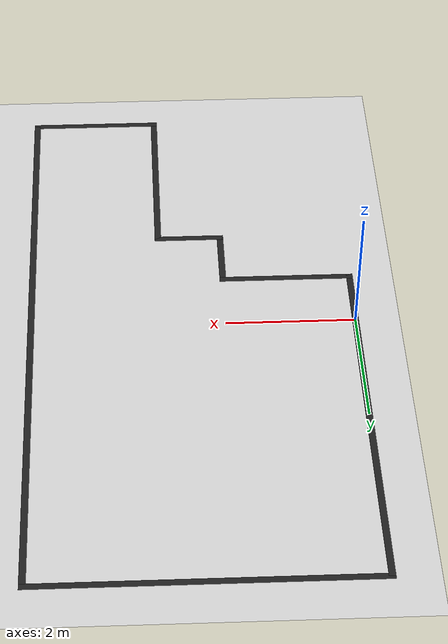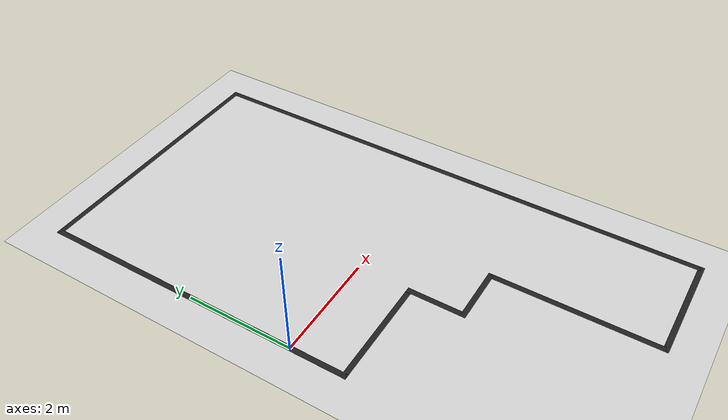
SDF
<?xml version="1.0" ?>
<sdf version='1.6'>
  <world name='empty'>
	<include>
		<uri>model://ground_plane</uri>
	 </include>
    	<include>
		<uri>model://sun</uri>
	</include>

    <model name='firstStraight'>
      <static>true</static>
      <link name='link'>
        <collision name='collision'>
          <geometry>
            <box>
              <size>0.1 5 0.0001</size>
            </box>
          </geometry>
          <surface>
            <friction>
              <ode>
                <mu>10</mu>
                <mu2>5</mu2>
              </ode>
            </friction>
          </surface>
        </collision>
        <visual name='visual'>
          <geometry>
            <box>
              <size>0.1 5 0.0001</size>
            </box>
          </geometry>
          <material>
            <script>
              <uri>file://media/materials/scripts/gazebo.material</uri>
              <name>Gazebo/Black</name>
            </script>
          </material>
        </visual>
      </link>
      <pose>0 2.5 0 0 0 0</pose>
      <joint name='joint' type='fixed'>
        <parent>world</parent>
        <child>link</child>
        <pose>0 2.5 0 0 0 0</pose>
      </joint>
    </model>

    <model name='firstRight'>
      <static>true</static>
      <link name='link'>
        <collision name='collision'>
          <geometry>
            <box>
              <size>5.1 0.1 0.0001</size>
            </box>
          </geometry>
          <surface>
            <friction>
              <ode>
                <mu>10</mu>
                <mu2>5</mu2>
              </ode>
            </friction>
          </surface>
        </collision>
        <visual name='visual'>
          <geometry>
            <box>
              <size>5.1 0.1 0.0001</size>
            </box>
          </geometry>
          <material>
            <script>
              <uri>file://media/materials/scripts/gazebo.material</uri>
              <name>Gazebo/Black</name>
            </script>
          </material>
        </visual>
      </link>
      <pose>2.5 5 0 0 0 0</pose>
      <joint name='joint' type='fixed'>
        <parent>world</parent>
        <child>link</child>
        <pose>2.5 5 0 0 0 0</pose>
      </joint>
    </model>

    <model name='firstBackLong'>
      <static>true</static>
      <link name='link'>
        <collision name='collision'>
          <geometry>
            <box>
              <size>0.1 10 0.0001</size>
            </box>
          </geometry>
          <surface>
            <friction>
              <ode>
                <mu>10</mu>
                <mu2>5</mu2>
              </ode>
            </friction>
          </surface>
        </collision>
        <visual name='visual'>
          <geometry>
            <box>
              <size>0.1 10 0.0001</size>
            </box>
          </geometry>
          <material>
            <script>
              <uri>file://media/materials/scripts/gazebo.material</uri>
              <name>Gazebo/Black</name>
            </script>
          </material>
        </visual>
      </link>
      <pose>5 0 0 0 0 0</pose>
      <joint name='joint' type='fixed'>
        <parent>world</parent>
        <child>link</child>
        <pose>5 0 0 0 0 0</pose>
      </joint>
    </model>

    <model name='secondRight'>
      <static>true</static>
      <link name='link'>
        <collision name='collision'>
          <geometry>
            <box>
              <size>2.1 0.1 0.0001</size>
            </box>
          </geometry>
          <surface>
            <friction>
              <ode>
                <mu>10</mu>
                <mu2>5</mu2>
              </ode>
            </friction>
          </surface>
        </collision>
        <visual name='visual'>
          <geometry>
            <box>
              <size>2.1 0.1 0.0001</size>
            </box>
          </geometry>
          <material>
            <script>
              <uri>file://media/materials/scripts/gazebo.material</uri>
              <name>Gazebo/Black</name>
            </script>
          </material>
        </visual>
      </link>
      <pose>4 -5 0 0 0 0</pose>
      <joint name='joint' type='fixed'>
        <parent>world</parent>
        <child>link</child>
        <pose>4 -5 0 0 0 0</pose>
      </joint>
    </model>

    <model name='secondFront'>
      <static>true</static>
      <link name='link'>
        <collision name='collision'>
          <geometry>
            <box>
              <size>0.1 3 0.0001</size>
            </box>
          </geometry>
          <surface>
            <friction>
              <ode>
                <mu>10</mu>
                <mu2>5</mu2>
              </ode>
            </friction>
          </surface>
        </collision>
        <visual name='visual'>
          <geometry>
            <box>
              <size>0.1 3 0.0001</size>
            </box>
          </geometry>
          <material>
            <script>
              <uri>file://media/materials/scripts/gazebo.material</uri>
              <name>Gazebo/Black</name>
            </script>
          </material>
        </visual>
      </link>
      <pose>3 -3.5 0 0 0 0</pose>
      <joint name='joint' type='fixed'>
        <parent>world</parent>
        <child>link</child>
        <pose>3 -3.5 0 0 0 0</pose>
      </joint>
    </model>

    <model name='firstLeft'>
      <static>true</static>
      <link name='link'>
        <collision name='collision'>
          <geometry>
            <box>
              <size>1.1 0.1 0.0001</size>
            </box>
          </geometry>
          <surface>
            <friction>
              <ode>
                <mu>10</mu>
                <mu2>5</mu2>
              </ode>
            </friction>
          </surface>
        </collision>
        <visual name='visual'>
          <geometry>
            <box>
              <size>1.1 0.1 0.0001</size>
            </box>
          </geometry>
          <material>
            <script>
              <uri>file://media/materials/scripts/gazebo.material</uri>
              <name>Gazebo/Black</name>
            </script>
          </material>
        </visual>
      </link>
      <pose>2.5 -2 0 0 0 0</pose>
      <joint name='joint' type='fixed'>
        <parent>world</parent>
        <child>link</child>
        <pose>2.5 -2 0 0 0 0</pose>
      </joint>
    </model>

    <model name='thirdFront'>
      <static>true</static>
      <link name='link'>
        <collision name='collision'>
          <geometry>
            <box>
              <size>0.1 1.1 0.0001</size>
            </box>
          </geometry>
          <surface>
            <friction>
              <ode>
                <mu>10</mu>
                <mu2>5</mu2>
              </ode>
            </friction>
          </surface>
        </collision>
        <visual name='visual'>
          <geometry>
            <box>
              <size>0.1 1.1 0.0001</size>
            </box>
          </geometry>
          <material>
            <script>
              <uri>file://media/materials/scripts/gazebo.material</uri>
              <name>Gazebo/Black</name>
            </script>
          </material>
        </visual>
      </link>
      <pose>2 -1.5 0 0 0 0</pose>
      <joint name='joint' type='fixed'>
        <parent>world</parent>
        <child>link</child>
        <pose>2 -1.5 0 0 0 0</pose>
      </joint>
    </model>

    <model name='thirdLeft'>
      <static>true</static>
      <link name='link'>
        <collision name='collision'>
          <geometry>
            <box>
              <size>2.1 0.1 0.0001</size>
            </box>
          </geometry>
          <surface>
            <friction>
              <ode>
                <mu>10</mu>
                <mu2>5</mu2>
              </ode>
            </friction>
          </surface>
        </collision>
        <visual name='visual'>
          <geometry>
            <box>
              <size>2.1 0.1 0.0001</size>
            </box>
          </geometry>
          <material>
            <script>
              <uri>file://media/materials/scripts/gazebo.material</uri>
              <name>Gazebo/Black</name>
            </script>
          </material>
        </visual>
      </link>
      <pose>1 -1 0 0 0 0</pose>
      <joint name='joint' type='fixed'>
        <parent>world</parent>
        <child>link</child>
        <pose>1 -1 0 0 0 0</pose>
      </joint>
    </model>

    <model name='fourthFront'>
      <static>true</static>
      <link name='link'>
        <collision name='collision'>
          <geometry>
            <box>
              <size>0.1 1.1 0.0001</size>
            </box>
          </geometry>
          <surface>
            <friction>
              <ode>
                <mu>10</mu>
                <mu2>5</mu2>
              </ode>
            </friction>
          </surface>
        </collision>
        <visual name='visual'>
          <geometry>
            <box>
              <size>0.1 1.1 0.0001</size>
            </box>
          </geometry>
          <material>
            <script>
              <uri>file://media/materials/scripts/gazebo.material</uri>
              <name>Gazebo/Black</name>
            </script>
          </material>
        </visual>
      </link>
      <pose>0 -0.5 0 0 0 0</pose>
      <joint name='joint' type='fixed'>
        <parent>world</parent>
        <child>link</child>
        <pose>0 -0.5 0 0 0 0</pose>
      </joint>
    </model>

    <physics type="ode">
      <real_time_update_rate>1000.0</real_time_update_rate>
      <max_step_size>0.001</max_step_size>
      <real_time_factor>1</real_time_factor>
      <ode>
        <solver>
          <type>quick</type>
          <iters>150</iters>
          <precon_iters>0</precon_iters>
          <sor>1.400000</sor>
          <use_dynamic_moi_rescaling>1</use_dynamic_moi_rescaling>
        </solver>
        <constraints>
          <cfm>0.00001</cfm>
          <erp>0.2</erp>
          <contact_max_correcting_vel>2000.000000</contact_max_correcting_vel>
          <contact_surface_layer>0.01000</contact_surface_layer>
        </constraints>
      </ode>
    </physics>
  </world>
</sdf>
